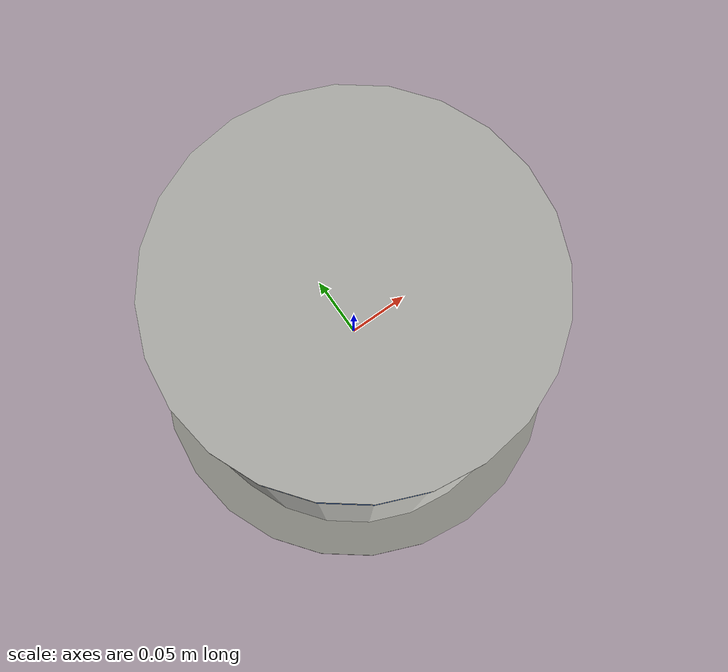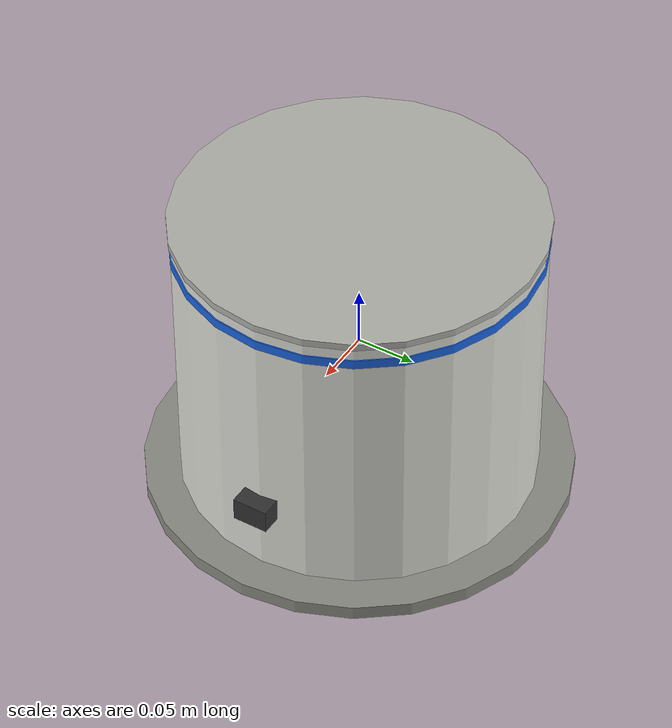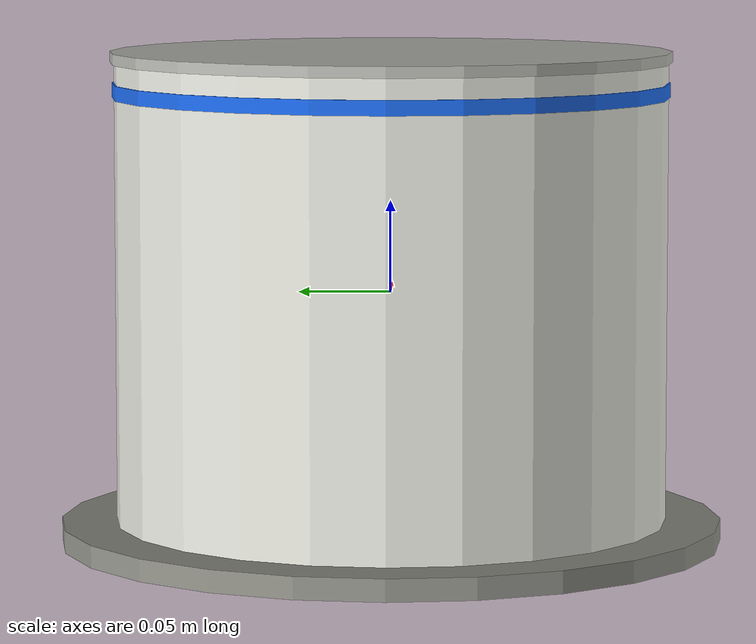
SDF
<?xml version="1.0" encoding="UTF-8"?>
<!--
  Dedrone RF-360 RF Direction-Finding Sensor Model
  Physical: cylinder ~0.30 m diameter × 0.25 m height, 7.0 kg
  Mounted on defense posts (corners r=250 m) on the base perimeter.
-->
<sdf version="1.9">
  <model name="rf360">
    <static>true</static>

    <link name="base_link">
      <!-- Main cylindrical enclosure -->
      <collision name="col_body">
        <geometry>
          <cylinder><radius>0.15</radius><length>0.25</length></cylinder>
        </geometry>
      </collision>
      <visual name="vis_body">
        <geometry>
          <cylinder><radius>0.15</radius><length>0.25</length></cylinder>
        </geometry>
        <material>
          <!-- Off-white / light grey — Dedrone RF-360 housing -->
          <ambient>0.88 0.88 0.85 1</ambient>
          <diffuse>0.88 0.88 0.85 1</diffuse>
          <specular>0.15 0.15 0.15 1</specular>
        </material>
      </visual>

      <!-- Top cap (slightly darker) -->
      <visual name="vis_top_cap">
        <pose>0 0 0.128 0 0 0</pose>
        <geometry>
          <cylinder><radius>0.152</radius><length>0.006</length></cylinder>
        </geometry>
        <material>
          <ambient>0.70 0.70 0.68 1</ambient>
          <diffuse>0.70 0.70 0.68 1</diffuse>
        </material>
      </visual>

      <!-- Bottom flange / mounting plate -->
      <visual name="vis_flange">
        <pose>0 0 -0.13 0 0 0</pose>
        <geometry>
          <cylinder><radius>0.18</radius><length>0.012</length></cylinder>
        </geometry>
        <material>
          <ambient>0.55 0.55 0.52 1</ambient>
          <diffuse>0.55 0.55 0.52 1</diffuse>
        </material>
      </visual>

      <!-- PoE Ethernet connector detail -->
      <visual name="vis_connector">
        <pose>0.155 0 -0.06 0 0 0</pose>
        <geometry>
          <box><size>0.020 0.030 0.020</size></box>
        </geometry>
        <material>
          <ambient>0.20 0.20 0.20 1</ambient>
          <diffuse>0.20 0.20 0.20 1</diffuse>
        </material>
      </visual>

      <!-- Status LED ring (blue stripe) -->
      <visual name="vis_led_ring">
        <pose>0 0 0.11 0 0 0</pose>
        <geometry>
          <cylinder><radius>0.151</radius><length>0.008</length></cylinder>
        </geometry>
        <material>
          <ambient>0.1 0.4 0.9 1</ambient>
          <diffuse>0.1 0.4 0.9 1</diffuse>
          <emissive>0.05 0.2 0.6 1</emissive>
        </material>
      </visual>
    </link>

    <plugin filename="rf360_plugin"
            name="acsdg_sensors_hw::RF360Plugin">
      <sensor_id>1</sensor_id>       <!-- overridden per instance -->
      <update_rate>1.0</update_rate>
    </plugin>

  </model>
</sdf>
